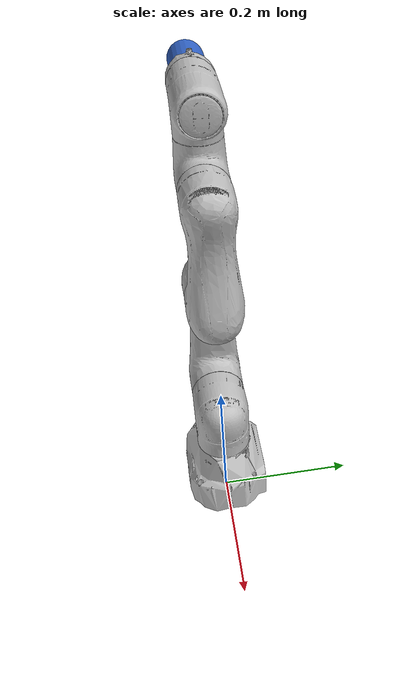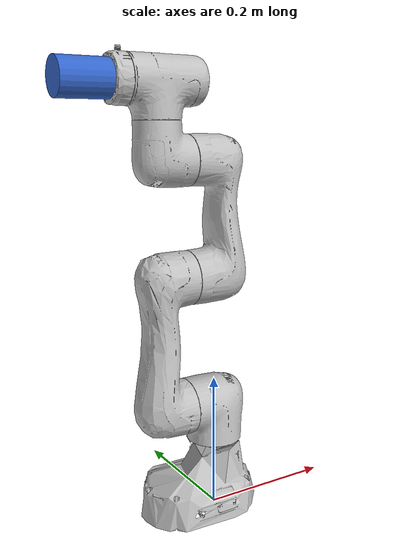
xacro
<?xml version="1.0"?>
<robot name="magician_e6" xmlns:xacro="http://www.ros.org/wiki/xacro">
  <xacro:arg name="controladores" default=""/>
  <xacro:arg name="efector_radio" default="0.025"/>
  <xacro:arg name="efector_largo" default="0.070"/>
  <xacro:property name="r" value="$(arg efector_radio)"/>
  <xacro:property name="l" value="$(arg efector_largo)"/>

  <xacro:include filename="$(find rl6gdl_e6_description)/urdf/magician_e6.urdf"/>

  <!-- La base del robot fija a la mesa (el origen del contrato es base_link) -->
  <link name="world"/>
  <joint name="base_fija" type="fixed">
    <parent link="world"/>
    <child link="base_link"/>
    <origin xyz="0 0 0" rpy="0 0 0"/>
  </joint>

  <!-- Efector del contrato (shared_scenarios/escenarios.yaml): cilindro sobre +z de tool0.
       Masa de 0.1 kg: dentro de la carga útil de 0.75 kg, solo para la física de Gazebo. -->
  <link name="efector">
    <inertial>
      <origin xyz="0 0 ${l / 2}"/>
      <mass value="0.1"/>
      <inertia ixx="${0.1 * (3 * r * r + l * l) / 12}" ixy="0" ixz="0"
               iyy="${0.1 * (3 * r * r + l * l) / 12}" iyz="0" izz="${0.1 * r * r / 2}"/>
    </inertial>
    <visual>
      <origin xyz="0 0 ${l / 2}"/>
      <geometry><cylinder radius="${r}" length="${l}"/></geometry>
      <material name="efector"><color rgba="0.2 0.4 0.8 1"/></material>
    </visual>
    <collision>
      <origin xyz="0 0 ${l / 2}"/>
      <geometry><cylinder radius="${r}" length="${l}"/></geometry>
    </collision>
  </link>
  <joint name="efector_joint" type="fixed">
    <parent link="tool0"/>
    <child link="efector"/>
  </joint>

  <ros2_control name="GazeboSimSystem" type="system">
    <hardware>
      <plugin>gz_ros2_control/GazeboSimSystem</plugin>
    </hardware>
    <xacro:macro name="articulacion" params="nombre">
      <joint name="${nombre}">
        <command_interface name="position"/>
        <state_interface name="position">
          <param name="initial_value">0.0</param>
        </state_interface>
        <state_interface name="velocity"/>
      </joint>
    </xacro:macro>
    <xacro:articulacion nombre="joint1"/>
    <xacro:articulacion nombre="joint2"/>
    <xacro:articulacion nombre="joint3"/>
    <xacro:articulacion nombre="joint4"/>
    <xacro:articulacion nombre="joint5"/>
    <xacro:articulacion nombre="joint6"/>
  </ros2_control>

  <gazebo>
    <plugin filename="gz_ros2_control-system" name="gz_ros2_control::GazeboSimROS2ControlPlugin">
      <parameters>$(arg controladores)</parameters>
    </plugin>
  </gazebo>
</robot>

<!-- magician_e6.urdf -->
<!-- GENERADO por tools/gen_modelo_e6.py. No editar a mano: regenerar. -->
<!-- Fuente: https://github.com/Dobot-Arm/DOBOT_6Axis_ROS2_V4.git @ ec201c40d5db63185a3593ec9c39f80fe25aa527 (MIT). Correcciones: ver README.md -->
<robot name="magician_e6">
  <link name="base_link">
    <inertial>
      <origin xyz="-0.0240568795993814 0.00375533156407527 0.0319345452713943" rpy="0 0 0"/>
      <mass value="2.173217"/>
      <inertia ixx="3.020601e-03" ixy="-1.872693e-05" ixz="-3.283040e-04" iyy="5.288548e-03" iyz="-1.298148e-05" izz="6.717396e-03"/>
    </inertial>
    <visual>
      <geometry><mesh filename="package://rl6gdl_e6_description/meshes/visual/base_link.stl"/></geometry>
      <material name="gris"><color rgba="0.75 0.75 0.75 1"/></material>
    </visual>
    <collision name="base_link_0"><geometry><mesh filename="package://rl6gdl_e6_description/meshes/collision/base_link_0.stl"/></geometry></collision>
    <collision name="base_link_1"><geometry><mesh filename="package://rl6gdl_e6_description/meshes/collision/base_link_1.stl"/></geometry></collision>
    <collision name="base_link_2"><geometry><mesh filename="package://rl6gdl_e6_description/meshes/collision/base_link_2.stl"/></geometry></collision>
    <collision name="base_link_3"><geometry><mesh filename="package://rl6gdl_e6_description/meshes/collision/base_link_3.stl"/></geometry></collision>
  </link>
  <link name="Link1">
    <inertial>
      <origin xyz="-0.0083034891135278 0.000169963422442479 0.0273090165667047" rpy="0 0 0"/>
      <mass value="0.689985"/>
      <inertia ixx="9.600762e-04" ixy="2.917680e-06" ixz="1.989532e-04" iyy="8.135447e-04" iyz="-2.241640e-06" izz="8.454355e-04"/>
    </inertial>
    <visual>
      <geometry><mesh filename="package://rl6gdl_e6_description/meshes/visual/Link1.stl"/></geometry>
      <material name="gris"><color rgba="0.75 0.75 0.75 1"/></material>
    </visual>
    <collision name="Link1_0"><geometry><mesh filename="package://rl6gdl_e6_description/meshes/collision/Link1_0.stl"/></geometry></collision>
  </link>
  <link name="Link2">
    <inertial>
      <origin xyz="-3.08219150776858E-06 0.0879305908719406 0.0388340121175632" rpy="0 0 0"/>
      <mass value="1.997437"/>
      <inertia ixx="1.155939e-02" ixy="-6.901748e-07" ixz="-1.755252e-07" iyy="1.406978e-03" iyz="4.514555e-05" izz="1.221095e-02"/>
    </inertial>
    <visual>
      <geometry><mesh filename="package://rl6gdl_e6_description/meshes/visual/Link2.stl"/></geometry>
      <material name="gris"><color rgba="0.75 0.75 0.75 1"/></material>
    </visual>
    <collision name="Link2_0"><geometry><mesh filename="package://rl6gdl_e6_description/meshes/collision/Link2_0.stl"/></geometry></collision>
    <collision name="Link2_1"><geometry><mesh filename="package://rl6gdl_e6_description/meshes/collision/Link2_1.stl"/></geometry></collision>
    <collision name="Link2_2"><geometry><mesh filename="package://rl6gdl_e6_description/meshes/collision/Link2_2.stl"/></geometry></collision>
    <collision name="Link2_3"><geometry><mesh filename="package://rl6gdl_e6_description/meshes/collision/Link2_3.stl"/></geometry></collision>
  </link>
  <link name="Link3">
    <inertial>
      <origin xyz="0.000287552185448503 0.071655088852445 -0.0471165778156417" rpy="0 0 0"/>
      <mass value="1.263166"/>
      <inertia ixx="6.327566e-03" ixy="2.147294e-05" ixz="-7.212666e-06" iyy="1.038998e-03" iyz="2.551788e-04" izz="6.667255e-03"/>
    </inertial>
    <visual>
      <geometry><mesh filename="package://rl6gdl_e6_description/meshes/visual/Link3.stl"/></geometry>
      <material name="gris"><color rgba="0.75 0.75 0.75 1"/></material>
    </visual>
    <collision name="Link3_0"><geometry><mesh filename="package://rl6gdl_e6_description/meshes/collision/Link3_0.stl"/></geometry></collision>
    <collision name="Link3_1"><geometry><mesh filename="package://rl6gdl_e6_description/meshes/collision/Link3_1.stl"/></geometry></collision>
    <collision name="Link3_2"><geometry><mesh filename="package://rl6gdl_e6_description/meshes/collision/Link3_2.stl"/></geometry></collision>
    <collision name="Link3_3"><geometry><mesh filename="package://rl6gdl_e6_description/meshes/collision/Link3_3.stl"/></geometry></collision>
  </link>
  <link name="Link4">
    <inertial>
      <origin xyz="4.09285774923343E-06 0.00868445353374203 0.0236778972827499" rpy="0 0 0"/>
      <mass value="0.391135"/>
      <inertia ixx="3.055578e-04" ixy="-9.187614e-09" ixz="-3.395162e-08" iyy="3.450956e-04" iyz="-7.627702e-05" izz="3.655450e-04"/>
    </inertial>
    <visual>
      <geometry><mesh filename="package://rl6gdl_e6_description/meshes/visual/Link4.stl"/></geometry>
      <material name="gris"><color rgba="0.75 0.75 0.75 1"/></material>
    </visual>
    <collision name="Link4_0"><geometry><mesh filename="package://rl6gdl_e6_description/meshes/collision/Link4_0.stl"/></geometry></collision>
  </link>
  <link name="Link5">
    <inertial>
      <origin xyz="0.0105483555263245 3.64597044475367E-06 0.0262055886148362" rpy="0 0 0"/>
      <mass value="0.532379"/>
      <inertia ixx="4.267877e-04" ixy="-5.902101e-08" ixz="6.291841e-05" iyy="4.150835e-04" iyz="2.250494e-08" izz="4.777332e-04"/>
    </inertial>
    <visual>
      <geometry><mesh filename="package://rl6gdl_e6_description/meshes/visual/Link5.stl"/></geometry>
      <material name="gris"><color rgba="0.75 0.75 0.75 1"/></material>
    </visual>
    <collision name="Link5_0"><geometry><mesh filename="package://rl6gdl_e6_description/meshes/collision/Link5_0.stl"/></geometry></collision>
  </link>
  <link name="Link6">
    <inertial>
      <origin xyz="-9.26807198336826E-06 0.00202791129000202 0.0111078385958137" rpy="0 0 0"/>
      <mass value="0.152681"/>
      <inertia ixx="5.565063e-05" ixy="2.239056e-08" ixz="1.601325e-09" iyy="5.215324e-05" iyz="-2.339140e-07" izz="9.836302e-05"/>
    </inertial>
    <visual>
      <geometry><mesh filename="package://rl6gdl_e6_description/meshes/visual/Link6.stl"/></geometry>
      <material name="gris"><color rgba="0.75 0.75 0.75 1"/></material>
    </visual>
    <collision name="Link6_0"><geometry><mesh filename="package://rl6gdl_e6_description/meshes/collision/Link6_0.stl"/></geometry></collision>
  </link>
  <joint name="joint1" type="revolute">
    <origin xyz="0 0 0.1268" rpy="0 0 0"/>
    <parent link="base_link"/>
    <child link="Link1"/>
    <axis xyz="0 0 1"/>
    <limit lower="-6.27" upper="6.27" effort="9.0" velocity="2.0944"/>
  </joint>
  <joint name="joint2" type="revolute">
    <origin xyz="-0.046 0 0.04" rpy="1.5708 0 -1.5708"/>
    <parent link="Link1"/>
    <child link="Link2"/>
    <axis xyz="0 0 1"/>
    <limit lower="-2.356" upper="2.356" effort="32.8" velocity="2.0944"/>
  </joint>
  <joint name="joint3" type="revolute">
    <origin xyz="0 0.18906 0.003" rpy="0 0 0"/>
    <parent link="Link2"/>
    <child link="Link3"/>
    <axis xyz="0 0 1"/>
    <limit lower="-2.6878" upper="2.6878" effort="14.1" velocity="2.0944"/>
  </joint>
  <joint name="joint4" type="revolute">
    <origin xyz="0 0.16 0.005" rpy="0 0 0"/>
    <parent link="Link3"/>
    <child link="Link4"/>
    <axis xyz="0 0 1"/>
    <limit lower="-2.7925" upper="2.7925" effort="4.4" velocity="2.0944"/>
  </joint>
  <joint name="joint5" type="revolute">
    <origin xyz="0 0.067 0.032" rpy="-1.5708 1.5708 0"/>
    <parent link="Link4"/>
    <child link="Link5"/>
    <axis xyz="0 0 1"/>
    <limit lower="-3.0194" upper="3.0194" effort="1.3" velocity="2.0944"/>
  </joint>
  <joint name="joint6" type="revolute">
    <origin xyz="-0.047 0 0.034" rpy="1.5708 0 -1.5708"/>
    <parent link="Link5"/>
    <child link="Link6"/>
    <axis xyz="0 0 1"/>
    <limit lower="-6.27" upper="6.27" effort="1.0" velocity="2.0944"/>
  </joint>
  <link name="tool0">
    <inertial><mass value="1e-6"/><inertia ixx="1e-9" ixy="0" ixz="0" iyy="1e-9" iyz="0" izz="1e-9"/></inertial>
  </link>
  <joint name="tool0_joint" type="fixed">
    <origin xyz="0 0 0.0190" rpy="0 0 0"/>
    <parent link="Link6"/>
    <child link="tool0"/>
  </joint>
</robot>
